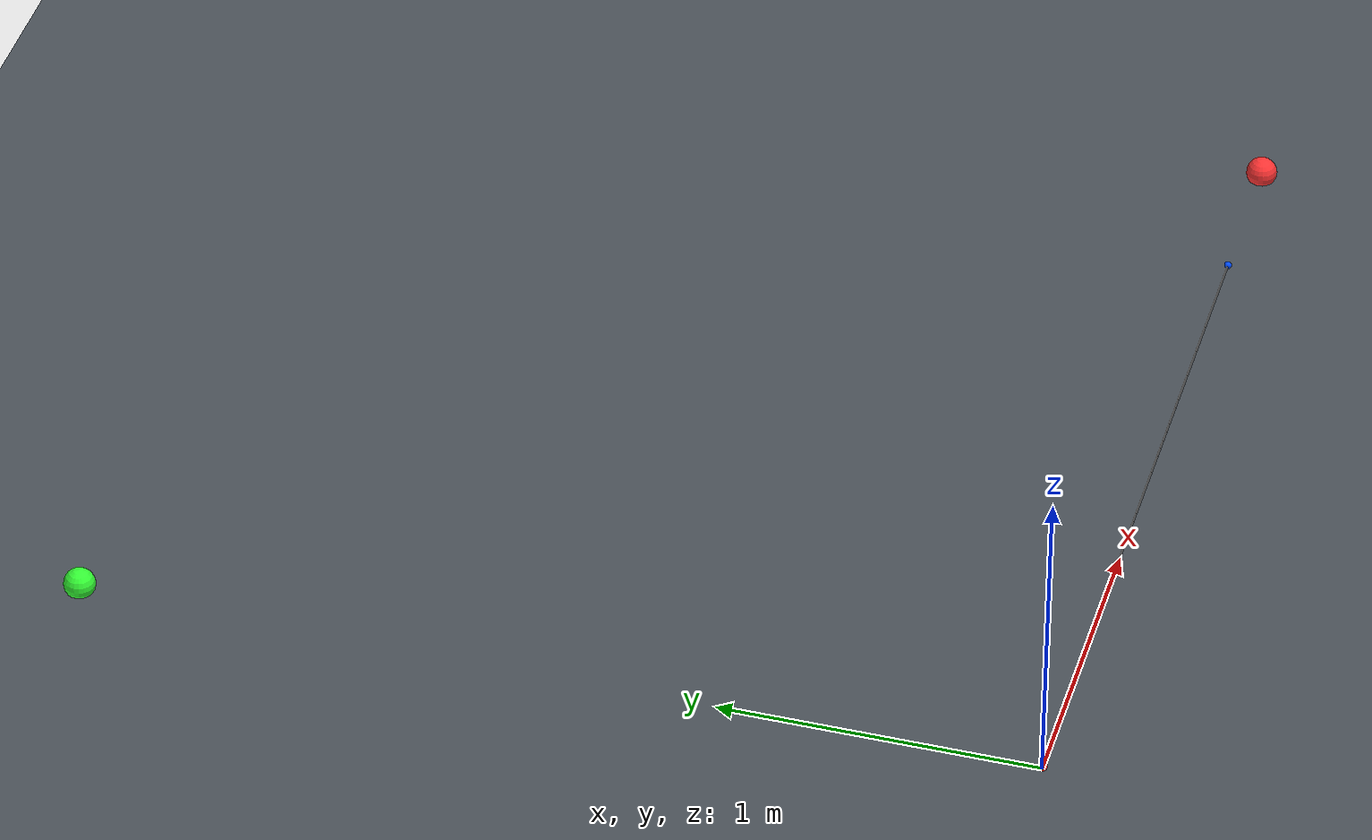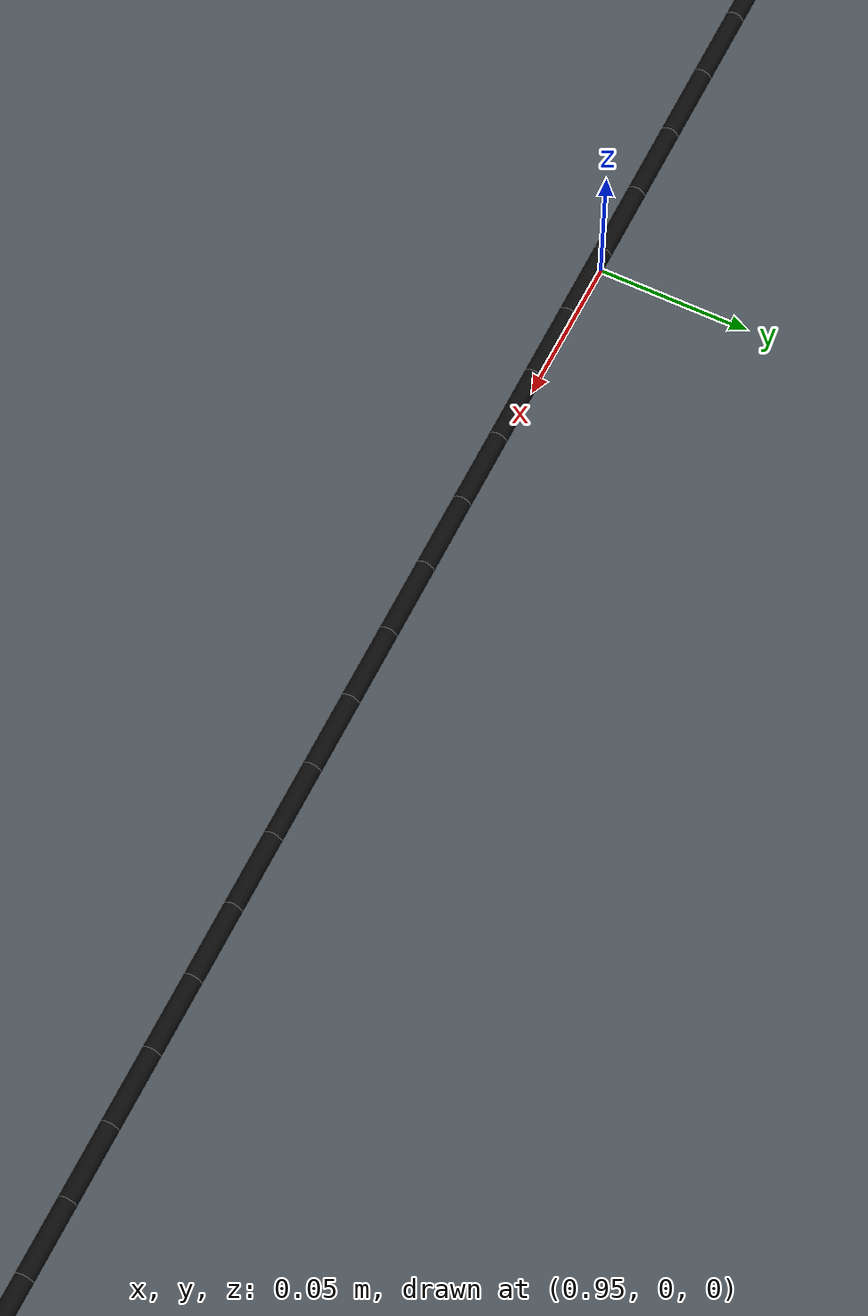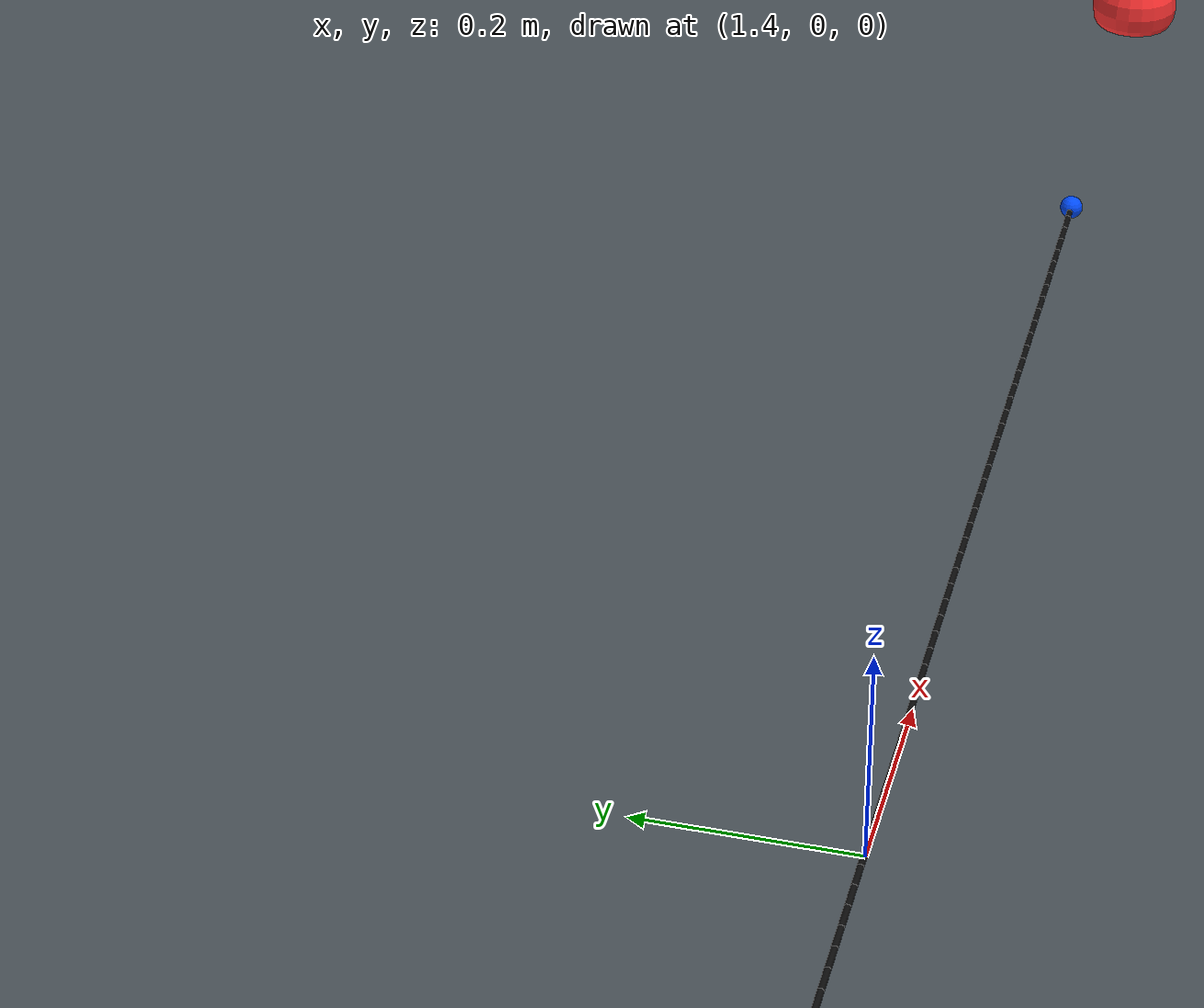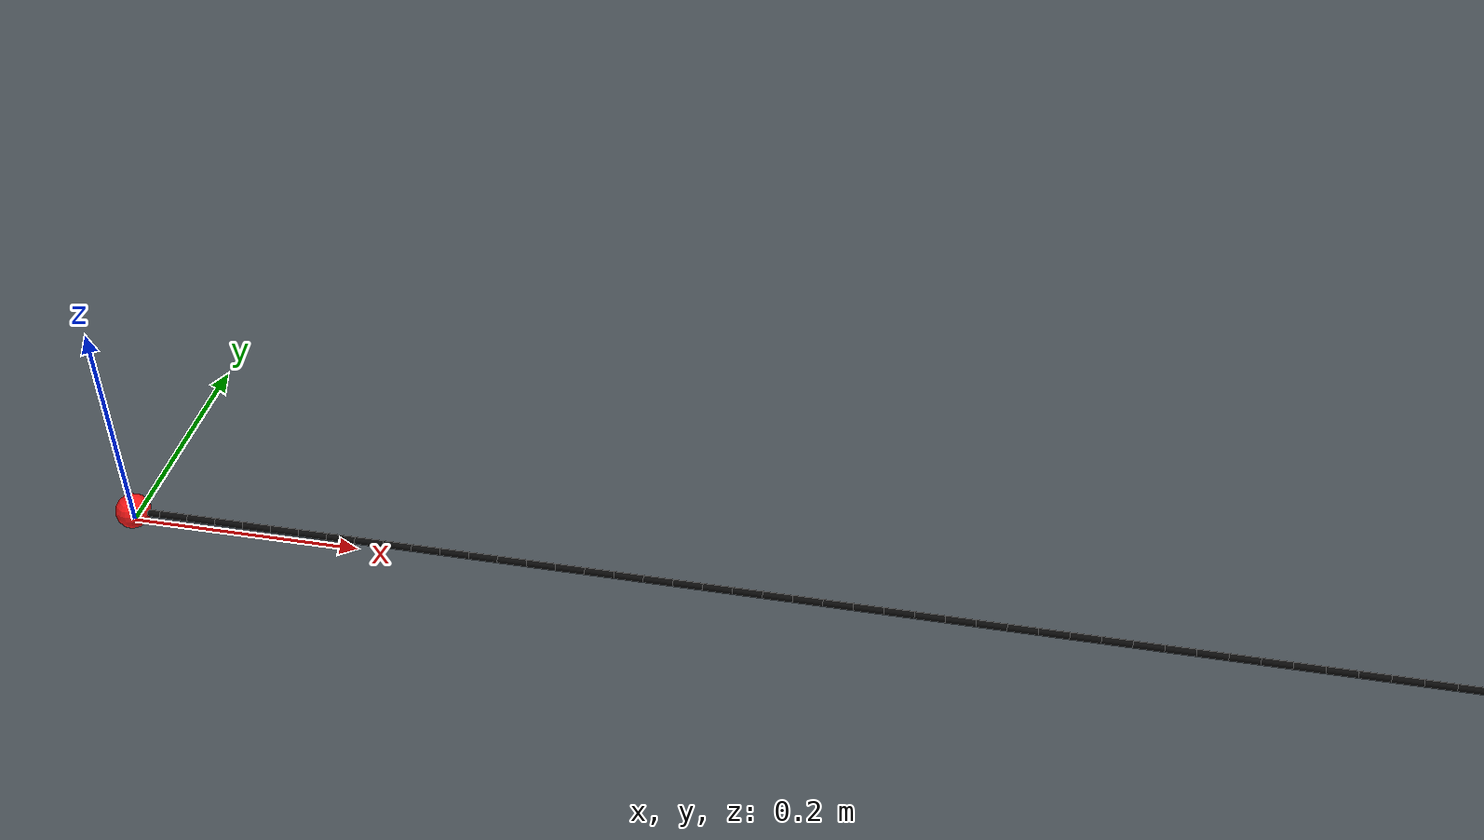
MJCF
<?xml version='1.0' encoding='utf-8'?>
<mujoco model="tether_static_n100">
  <compiler angle="radian" coordinate="local" />
  <option timestep="0.001" gravity="0 0 -9.80665" integrator="RK4" density="1.2" viscosity="0" />
  <default>
    <geom contype="1" conaffinity="1" condim="3" friction="1.0 0.05 0.05" />
    <site type="sphere" size="0.008" rgba="1 0 0 1" />
  </default>
  <visual>
    <headlight ambient="0.4 0.4 0.4" />
    <global offwidth="1280" offheight="720" />
  </visual>
  <asset>
    <texture name="grid" type="2d" builtin="checker" rgb1="0.25 0.28 0.30" rgb2="0.32 0.35 0.38" width="512" height="512" />
    <material name="grid" texture="grid" texrepeat="12 12" reflectance="0.05" />
  </asset>
  <worldbody>
    <light pos="0 0 6" dir="0 0 -1" diffuse="0.8 0.8 0.8" />
    <geom name="floor" type="plane" size="60 60 0.1" material="grid" pos="0 0 0" />
    <site name="east_marker" pos="3 0 0.02" size="0.05" rgba="1 0.2 0.2 1" />
    <site name="north_marker" pos="0 3 0.02" size="0.05" rgba="0.2 1 0.2 1" />
    <body name="tether_link_1" pos="0 0 0.01">
      <joint name="tether_joint_1" type="ball" damping="0.002" armature="1e-6" />
      <geom name="tether_geom_1" type="capsule" fromto="0 0 0 0.025000000000000001 0 0" size="0.0030000000000000001" mass="0.0015" contype="2" conaffinity="1" rgba="0.04 0.04 0.04 1" />
      <body name="tether_link_2" pos="0.025000000000000001 0 0">
        <joint name="tether_joint_2" type="ball" damping="0.002" armature="1e-6" />
        <geom name="tether_geom_2" type="capsule" fromto="0 0 0 0.025000000000000001 0 0" size="0.0030000000000000001" mass="0.0015" contype="2" conaffinity="1" rgba="0.04 0.04 0.04 1" />
        <body name="tether_link_3" pos="0.025000000000000001 0 0">
          <joint name="tether_joint_3" type="ball" damping="0.002" armature="1e-6" />
          <geom name="tether_geom_3" type="capsule" fromto="0 0 0 0.025000000000000008 0 0" size="0.0030000000000000001" mass="0.0015" contype="2" conaffinity="1" rgba="0.04 0.04 0.04 1" />
          <body name="tether_link_4" pos="0.025000000000000008 0 0">
            <joint name="tether_joint_4" type="ball" damping="0.002" armature="1e-6" />
            <geom name="tether_geom_4" type="capsule" fromto="0 0 0 0.024999999999999994 0 0" size="0.0030000000000000001" mass="0.0015" contype="2" conaffinity="1" rgba="0.04 0.04 0.04 1" />
            <body name="tether_link_5" pos="0.024999999999999994 0 0">
              <joint name="tether_joint_5" type="ball" damping="0.002" armature="1e-6" />
              <geom name="tether_geom_5" type="capsule" fromto="0 0 0 0.024999999999999994 0 0" size="0.0030000000000000001" mass="0.0015" contype="2" conaffinity="1" rgba="0.04 0.04 0.04 1" />
              <body name="tether_link_6" pos="0.024999999999999994 0 0">
                <joint name="tether_joint_6" type="ball" damping="0.002" armature="1e-6" />
                <geom name="tether_geom_6" type="capsule" fromto="0 0 0 0.025000000000000022 0 0" size="0.0030000000000000001" mass="0.0015" contype="2" conaffinity="1" rgba="0.04 0.04 0.04 1" />
                <body name="tether_link_7" pos="0.025000000000000022 0 0">
                  <joint name="tether_joint_7" type="ball" damping="0.002" armature="1e-6" />
                  <geom name="tether_geom_7" type="capsule" fromto="0 0 0 0.024999999999999994 0 0" size="0.0030000000000000001" mass="0.0015" contype="2" conaffinity="1" rgba="0.04 0.04 0.04 1" />
                  <body name="tether_link_8" pos="0.024999999999999994 0 0">
                    <joint name="tether_joint_8" type="ball" damping="0.002" armature="1e-6" />
                    <geom name="tether_geom_8" type="capsule" fromto="0 0 0 0.024999999999999994 0 0" size="0.0030000000000000001" mass="0.0015" contype="2" conaffinity="1" rgba="0.04 0.04 0.04 1" />
                    <body name="tether_link_9" pos="0.024999999999999994 0 0">
                      <joint name="tether_joint_9" type="ball" damping="0.002" armature="1e-6" />
                      <geom name="tether_geom_9" type="capsule" fromto="0 0 0 0.024999999999999994 0 0" size="0.0030000000000000001" mass="0.0015" contype="2" conaffinity="1" rgba="0.04 0.04 0.04 1" />
                      <body name="tether_link_10" pos="0.024999999999999994 0 0">
                        <joint name="tether_joint_10" type="ball" damping="0.002" armature="1e-6" />
                        <geom name="tether_geom_10" type="capsule" fromto="0 0 0 0.024999999999999994 0 0" size="0.0030000000000000001" mass="0.0015" contype="2" conaffinity="1" rgba="0.04 0.04 0.04 1" />
                        <body name="tether_link_11" pos="0.024999999999999994 0 0">
                          <joint name="tether_joint_11" type="ball" damping="0.002" armature="1e-6" />
                          <geom name="tether_geom_11" type="capsule" fromto="0 0 0 0.025000000000000022 0 0" size="0.0030000000000000001" mass="0.0015" contype="2" conaffinity="1" rgba="0.04 0.04 0.04 1" />
                          <body name="tether_link_12" pos="0.025000000000000022 0 0">
                            <joint name="tether_joint_12" type="ball" damping="0.002" armature="1e-6" />
                            <geom name="tether_geom_12" type="capsule" fromto="0 0 0 0.025000000000000022 0 0" size="0.0030000000000000001" mass="0.0015" contype="2" conaffinity="1" rgba="0.04 0.04 0.04 1" />
                            <body name="tether_link_13" pos="0.025000000000000022 0 0">
                              <joint name="tether_joint_13" type="ball" damping="0.002" armature="1e-6" />
                              <geom name="tether_geom_13" type="capsule" fromto="0 0 0 0.024999999999999967 0 0" size="0.0030000000000000001" mass="0.0015" contype="2" conaffinity="1" rgba="0.04 0.04 0.04 1" />
                              <body name="tether_link_14" pos="0.024999999999999967 0 0">
                                <joint name="tether_joint_14" type="ball" damping="0.002" armature="1e-6" />
                                <geom name="tether_geom_14" type="capsule" fromto="0 0 0 0.025000000000000022 0 0" size="0.0030000000000000001" mass="0.0015" contype="2" conaffinity="1" rgba="0.04 0.04 0.04 1" />
                                <body name="tether_link_15" pos="0.025000000000000022 0 0">
                                  <joint name="tether_joint_15" type="ball" damping="0.002" armature="1e-6" />
                                  <geom name="tether_geom_15" type="capsule" fromto="0 0 0 0.024999999999999967 0 0" size="0.0030000000000000001" mass="0.0015" contype="2" conaffinity="1" rgba="0.04 0.04 0.04 1" />
                                  <body name="tether_link_16" pos="0.024999999999999967 0 0">
                                    <joint name="tether_joint_16" type="ball" damping="0.002" armature="1e-6" />
                                    <geom name="tether_geom_16" type="capsule" fromto="0 0 0 0.025000000000000022 0 0" size="0.0030000000000000001" mass="0.0015" contype="2" conaffinity="1" rgba="0.04 0.04 0.04 1" />
                                    <body name="tether_link_17" pos="0.025000000000000022 0 0">
                                      <joint name="tether_joint_17" type="ball" damping="0.002" armature="1e-6" />
                                      <geom name="tether_geom_17" type="capsule" fromto="0 0 0 0.025000000000000022 0 0" size="0.0030000000000000001" mass="0.0015" contype="2" conaffinity="1" rgba="0.04 0.04 0.04 1" />
                                      <body name="tether_link_18" pos="0.025000000000000022 0 0">
                                        <joint name="tether_joint_18" type="ball" damping="0.002" armature="1e-6" />
                                        <geom name="tether_geom_18" type="capsule" fromto="0 0 0 0.024999999999999967 0 0" size="0.0030000000000000001" mass="0.0015" contype="2" conaffinity="1" rgba="0.04 0.04 0.04 1" />
                                        <body name="tether_link_19" pos="0.024999999999999967 0 0">
                                          <joint name="tether_joint_19" type="ball" damping="0.002" armature="1e-6" />
                                          <geom name="tether_geom_19" type="capsule" fromto="0 0 0 0.025000000000000022 0 0" size="0.0030000000000000001" mass="0.0015" contype="2" conaffinity="1" rgba="0.04 0.04 0.04 1" />
                                          <body name="tether_link_20" pos="0.025000000000000022 0 0">
                                            <joint name="tether_joint_20" type="ball" damping="0.002" armature="1e-6" />
                                            <geom name="tether_geom_20" type="capsule" fromto="0 0 0 0.024999999999999967 0 0" size="0.0030000000000000001" mass="0.0015" contype="2" conaffinity="1" rgba="0.04 0.04 0.04 1" />
                                            <body name="tether_link_21" pos="0.024999999999999967 0 0">
                                              <joint name="tether_joint_21" type="ball" damping="0.002" armature="1e-6" />
                                              <geom name="tether_geom_21" type="capsule" fromto="0 0 0 0.025000000000000022 0 0" size="0.0030000000000000001" mass="0.0015" contype="2" conaffinity="1" rgba="0.04 0.04 0.04 1" />
                                              <body name="tether_link_22" pos="0.025000000000000022 0 0">
                                                <joint name="tether_joint_22" type="ball" damping="0.002" armature="1e-6" />
                                                <geom name="tether_geom_22" type="capsule" fromto="0 0 0 0.025000000000000022 0 0" size="0.0030000000000000001" mass="0.0015" contype="2" conaffinity="1" rgba="0.04 0.04 0.04 1" />
                                                <body name="tether_link_23" pos="0.025000000000000022 0 0">
                                                  <joint name="tether_joint_23" type="ball" damping="0.002" armature="1e-6" />
                                                  <geom name="tether_geom_23" type="capsule" fromto="0 0 0 0.025000000000000022 0 0" size="0.0030000000000000001" mass="0.0015" contype="2" conaffinity="1" rgba="0.04 0.04 0.04 1" />
                                                  <body name="tether_link_24" pos="0.025000000000000022 0 0">
                                                    <joint name="tether_joint_24" type="ball" damping="0.002" armature="1e-6" />
                                                    <geom name="tether_geom_24" type="capsule" fromto="0 0 0 0.025000000000000022 0 0" size="0.0030000000000000001" mass="0.0015" contype="2" conaffinity="1" rgba="0.04 0.04 0.04 1" />
                                                    <body name="tether_link_25" pos="0.025000000000000022 0 0">
                                                      <joint name="tether_joint_25" type="ball" damping="0.002" armature="1e-6" />
                                                      <geom name="tether_geom_25" type="capsule" fromto="0 0 0 0.024999999999999911 0 0" size="0.0030000000000000001" mass="0.0015" contype="2" conaffinity="1" rgba="0.04 0.04 0.04 1" />
                                                      <body name="tether_link_26" pos="0.024999999999999911 0 0">
                                                        <joint name="tether_joint_26" type="ball" damping="0.002" armature="1e-6" />
                                                        <geom name="tether_geom_26" type="capsule" fromto="0 0 0 0.025000000000000022 0 0" size="0.0030000000000000001" mass="0.0015" contype="2" conaffinity="1" rgba="0.04 0.04 0.04 1" />
                                                        <body name="tether_link_27" pos="0.025000000000000022 0 0">
                                                          <joint name="tether_joint_27" type="ball" damping="0.002" armature="1e-6" />
                                                          <geom name="tether_geom_27" type="capsule" fromto="0 0 0 0.025000000000000022 0 0" size="0.0030000000000000001" mass="0.0015" contype="2" conaffinity="1" rgba="0.04 0.04 0.04 1" />
                                                          <body name="tether_link_28" pos="0.025000000000000022 0 0">
                                                            <joint name="tether_joint_28" type="ball" damping="0.002" armature="1e-6" />
                                                            <geom name="tether_geom_28" type="capsule" fromto="0 0 0 0.025000000000000022 0 0" size="0.0030000000000000001" mass="0.0015" contype="2" conaffinity="1" rgba="0.04 0.04 0.04 1" />
                                                            <body name="tether_link_29" pos="0.025000000000000022 0 0">
                                                              <joint name="tether_joint_29" type="ball" damping="0.002" armature="1e-6" />
                                                              <geom name="tether_geom_29" type="capsule" fromto="0 0 0 0.025000000000000022 0 0" size="0.0030000000000000001" mass="0.0015" contype="2" conaffinity="1" rgba="0.04 0.04 0.04 1" />
                                                              <body name="tether_link_30" pos="0.025000000000000022 0 0">
                                                                <joint name="tether_joint_30" type="ball" damping="0.002" armature="1e-6" />
                                                                <geom name="tether_geom_30" type="capsule" fromto="0 0 0 0.024999999999999911 0 0" size="0.0030000000000000001" mass="0.0015" contype="2" conaffinity="1" rgba="0.04 0.04 0.04 1" />
                                                                <body name="tether_link_31" pos="0.024999999999999911 0 0">
                                                                  <joint name="tether_joint_31" type="ball" damping="0.002" armature="1e-6" />
                                                                  <geom name="tether_geom_31" type="capsule" fromto="0 0 0 0.025000000000000022 0 0" size="0.0030000000000000001" mass="0.0015" contype="2" conaffinity="1" rgba="0.04 0.04 0.04 1" />
                                                                  <body name="tether_link_32" pos="0.025000000000000022 0 0">
                                                                    <joint name="tether_joint_32" type="ball" damping="0.002" armature="1e-6" />
                                                                    <geom name="tether_geom_32" type="capsule" fromto="0 0 0 0.025000000000000022 0 0" size="0.0030000000000000001" mass="0.0015" contype="2" conaffinity="1" rgba="0.04 0.04 0.04 1" />
                                                                    <body name="tether_link_33" pos="0.025000000000000022 0 0">
                                                                      <joint name="tether_joint_33" type="ball" damping="0.002" armature="1e-6" />
                                                                      <geom name="tether_geom_33" type="capsule" fromto="0 0 0 0.025000000000000022 0 0" size="0.0030000000000000001" mass="0.0015" contype="2" conaffinity="1" rgba="0.04 0.04 0.04 1" />
                                                                      <body name="tether_link_34" pos="0.025000000000000022 0 0">
                                                                        <joint name="tether_joint_34" type="ball" damping="0.002" armature="1e-6" />
                                                                        <geom name="tether_geom_34" type="capsule" fromto="0 0 0 0.025000000000000022 0 0" size="0.0030000000000000001" mass="0.0015" contype="2" conaffinity="1" rgba="0.04 0.04 0.04 1" />
                                                                        <body name="tether_link_35" pos="0.025000000000000022 0 0">
                                                                          <joint name="tether_joint_35" type="ball" damping="0.002" armature="1e-6" />
                                                                          <geom name="tether_geom_35" type="capsule" fromto="0 0 0 0.024999999999999911 0 0" size="0.0030000000000000001" mass="0.0015" contype="2" conaffinity="1" rgba="0.04 0.04 0.04 1" />
                                                                          <body name="tether_link_36" pos="0.024999999999999911 0 0">
                                                                            <joint name="tether_joint_36" type="ball" damping="0.002" armature="1e-6" />
                                                                            <geom name="tether_geom_36" type="capsule" fromto="0 0 0 0.025000000000000022 0 0" size="0.0030000000000000001" mass="0.0015" contype="2" conaffinity="1" rgba="0.04 0.04 0.04 1" />
                                                                            <body name="tether_link_37" pos="0.025000000000000022 0 0">
                                                                              <joint name="tether_joint_37" type="ball" damping="0.002" armature="1e-6" />
                                                                              <geom name="tether_geom_37" type="capsule" fromto="0 0 0 0.025000000000000022 0 0" size="0.0030000000000000001" mass="0.0015" contype="2" conaffinity="1" rgba="0.04 0.04 0.04 1" />
                                                                              <body name="tether_link_38" pos="0.025000000000000022 0 0">
                                                                                <joint name="tether_joint_38" type="ball" damping="0.002" armature="1e-6" />
                                                                                <geom name="tether_geom_38" type="capsule" fromto="0 0 0 0.025000000000000022 0 0" size="0.0030000000000000001" mass="0.0015" contype="2" conaffinity="1" rgba="0.04 0.04 0.04 1" />
                                                                                <body name="tether_link_39" pos="0.025000000000000022 0 0">
                                                                                  <joint name="tether_joint_39" type="ball" damping="0.002" armature="1e-6" />
                                                                                  <geom name="tether_geom_39" type="capsule" fromto="0 0 0 0.025000000000000022 0 0" size="0.0030000000000000001" mass="0.0015" contype="2" conaffinity="1" rgba="0.04 0.04 0.04 1" />
                                                                                  <body name="tether_link_40" pos="0.025000000000000022 0 0">
                                                                                    <joint name="tether_joint_40" type="ball" damping="0.002" armature="1e-6" />
                                                                                    <geom name="tether_geom_40" type="capsule" fromto="0 0 0 0.024999999999999911 0 0" size="0.0030000000000000001" mass="0.0015" contype="2" conaffinity="1" rgba="0.04 0.04 0.04 1" />
                                                                                    <body name="tether_link_41" pos="0.024999999999999911 0 0">
                                                                                      <joint name="tether_joint_41" type="ball" damping="0.002" armature="1e-6" />
                                                                                      <geom name="tether_geom_41" type="capsule" fromto="0 0 0 0.025000000000000133 0 0" size="0.0030000000000000001" mass="0.0015" contype="2" conaffinity="1" rgba="0.04 0.04 0.04 1" />
                                                                                      <body name="tether_link_42" pos="0.025000000000000133 0 0">
                                                                                        <joint name="tether_joint_42" type="ball" damping="0.002" armature="1e-6" />
                                                                                        <geom name="tether_geom_42" type="capsule" fromto="0 0 0 0.024999999999999911 0 0" size="0.0030000000000000001" mass="0.0015" contype="2" conaffinity="1" rgba="0.04 0.04 0.04 1" />
                                                                                        <body name="tether_link_43" pos="0.024999999999999911 0 0">
                                                                                          <joint name="tether_joint_43" type="ball" damping="0.002" armature="1e-6" />
                                                                                          <geom name="tether_geom_43" type="capsule" fromto="0 0 0 0.024999999999999911 0 0" size="0.0030000000000000001" mass="0.0015" contype="2" conaffinity="1" rgba="0.04 0.04 0.04 1" />
                                                                                          <body name="tether_link_44" pos="0.024999999999999911 0 0">
                                                                                            <joint name="tether_joint_44" type="ball" damping="0.002" armature="1e-6" />
                                                                                            <geom name="tether_geom_44" type="capsule" fromto="0 0 0 0.025000000000000133 0 0" size="0.0030000000000000001" mass="0.0015" contype="2" conaffinity="1" rgba="0.04 0.04 0.04 1" />
                                                                                            <body name="tether_link_45" pos="0.025000000000000133 0 0">
                                                                                              <joint name="tether_joint_45" type="ball" damping="0.002" armature="1e-6" />
                                                                                              <geom name="tether_geom_45" type="capsule" fromto="0 0 0 0.024999999999999911 0 0" size="0.0030000000000000001" mass="0.0015" contype="2" conaffinity="1" rgba="0.04 0.04 0.04 1" />
                                                                                              <body name="tether_link_46" pos="0.024999999999999911 0 0">
                                                                                                <joint name="tether_joint_46" type="ball" damping="0.002" armature="1e-6" />
                                                                                                <geom name="tether_geom_46" type="capsule" fromto="0 0 0 0.025000000000000133 0 0" size="0.0030000000000000001" mass="0.0015" contype="2" conaffinity="1" rgba="0.04 0.04 0.04 1" />
                                                                                                <body name="tether_link_47" pos="0.025000000000000133 0 0">
                                                                                                  <joint name="tether_joint_47" type="ball" damping="0.002" armature="1e-6" />
                                                                                                  <geom name="tether_geom_47" type="capsule" fromto="0 0 0 0.024999999999999911 0 0" size="0.0030000000000000001" mass="0.0015" contype="2" conaffinity="1" rgba="0.04 0.04 0.04 1" />
                                                                                                  <body name="tether_link_48" pos="0.024999999999999911 0 0">
                                                                                                    <joint name="tether_joint_48" type="ball" damping="0.002" armature="1e-6" />
                                                                                                    <geom name="tether_geom_48" type="capsule" fromto="0 0 0 0.025000000000000133 0 0" size="0.0030000000000000001" mass="0.0015" contype="2" conaffinity="1" rgba="0.04 0.04 0.04 1" />
                                                                                                    <body name="tether_link_49" pos="0.025000000000000133 0 0">
                                                                                                      <joint name="tether_joint_49" type="ball" damping="0.002" armature="1e-6" />
                                                                                                      <geom name="tether_geom_49" type="capsule" fromto="0 0 0 0.024999999999999911 0 0" size="0.0030000000000000001" mass="0.0015" contype="2" conaffinity="1" rgba="0.04 0.04 0.04 1" />
                                                                                                      <body name="tether_link_50" pos="0.024999999999999911 0 0">
                                                                                                        <joint name="tether_joint_50" type="ball" damping="0.002" armature="1e-6" />
                                                                                                        <geom name="tether_geom_50" type="capsule" fromto="0 0 0 0.024999999999999911 0 0" size="0.0030000000000000001" mass="0.0015" contype="2" conaffinity="1" rgba="0.04 0.04 0.04 1" />
                                                                                                        <body name="tether_link_51" pos="0.024999999999999911 0 0">
                                                                                                          <joint name="tether_joint_51" type="ball" damping="0.002" armature="1e-6" />
                                                                                                          <geom name="tether_geom_51" type="capsule" fromto="0 0 0 0.025000000000000133 0 0" size="0.0030000000000000001" mass="0.0015" contype="2" conaffinity="1" rgba="0.04 0.04 0.04 1" />
                                                                                                          <body name="tether_link_52" pos="0.025000000000000133 0 0">
                                                                                                            <joint name="tether_joint_52" type="ball" damping="0.002" armature="1e-6" />
                                                                                                            <geom name="tether_geom_52" type="capsule" fromto="0 0 0 0.024999999999999911 0 0" size="0.0030000000000000001" mass="0.0015" contype="2" conaffinity="1" rgba="0.04 0.04 0.04 1" />
                                                                                                            <body name="tether_link_53" pos="0.024999999999999911 0 0">
                                                                                                              <joint name="tether_joint_53" type="ball" damping="0.002" armature="1e-6" />
                                                                                                              <geom name="tether_geom_53" type="capsule" fromto="0 0 0 0.025000000000000133 0 0" size="0.0030000000000000001" mass="0.0015" contype="2" conaffinity="1" rgba="0.04 0.04 0.04 1" />
                                                                                                              <body name="tether_link_54" pos="0.025000000000000133 0 0">
                                                                                                                <joint name="tether_joint_54" type="ball" damping="0.002" armature="1e-6" />
                                                                                                                <geom name="tether_geom_54" type="capsule" fromto="0 0 0 0.024999999999999911 0 0" size="0.0030000000000000001" mass="0.0015" contype="2" conaffinity="1" rgba="0.04 0.04 0.04 1" />
                                                                                                                <body name="tether_link_55" pos="0.024999999999999911 0 0">
                                                                                                                  <joint name="tether_joint_55" type="ball" damping="0.002" armature="1e-6" />
                                                                                                                  <geom name="tether_geom_55" type="capsule" fromto="0 0 0 0.024999999999999911 0 0" size="0.0030000000000000001" mass="0.0015" contype="2" conaffinity="1" rgba="0.04 0.04 0.04 1" />
                                                                                                                  <body name="tether_link_56" pos="0.024999999999999911 0 0">
                                                                                                                    <joint name="tether_joint_56" type="ball" damping="0.002" armature="1e-6" />
                                                                                                                    <geom name="tether_geom_56" type="capsule" fromto="0 0 0 0.025000000000000133 0 0" size="0.0030000000000000001" mass="0.0015" contype="2" conaffinity="1" rgba="0.04 0.04 0.04 1" />
                                                                                                                    <body name="tether_link_57" pos="0.025000000000000133 0 0">
                                                                                                                      <joint name="tether_joint_57" type="ball" damping="0.002" armature="1e-6" />
                                                                                                                      <geom name="tether_geom_57" type="capsule" fromto="0 0 0 0.024999999999999911 0 0" size="0.0030000000000000001" mass="0.0015" contype="2" conaffinity="1" rgba="0.04 0.04 0.04 1" />
                                                                                                                      <body name="tether_link_58" pos="0.024999999999999911 0 0">
                                                                                                                        <joint name="tether_joint_58" type="ball" damping="0.002" armature="1e-6" />
                                                                                                                        <geom name="tether_geom_58" type="capsule" fromto="0 0 0 0.025000000000000133 0 0" size="0.0030000000000000001" mass="0.0015" contype="2" conaffinity="1" rgba="0.04 0.04 0.04 1" />
                                                                                                                        <body name="tether_link_59" pos="0.025000000000000133 0 0">
                                                                                                                          <joint name="tether_joint_59" type="ball" damping="0.002" armature="1e-6" />
                                                                                                                          <geom name="tether_geom_59" type="capsule" fromto="0 0 0 0.024999999999999911 0 0" size="0.0030000000000000001" mass="0.0015" contype="2" conaffinity="1" rgba="0.04 0.04 0.04 1" />
                                                                                                                          <body name="tether_link_60" pos="0.024999999999999911 0 0">
                                                                                                                            <joint name="tether_joint_60" type="ball" damping="0.002" armature="1e-6" />
                                                                                                                            <geom name="tether_geom_60" type="capsule" fromto="0 0 0 0.024999999999999911 0 0" size="0.0030000000000000001" mass="0.0015" contype="2" conaffinity="1" rgba="0.04 0.04 0.04 1" />
                                                                                                                            <body name="tether_link_61" pos="0.024999999999999911 0 0">
                                                                                                                              <joint name="tether_joint_61" type="ball" damping="0.002" armature="1e-6" />
                                                                                                                              <geom name="tether_geom_61" type="capsule" fromto="0 0 0 0.025000000000000133 0 0" size="0.0030000000000000001" mass="0.0015" contype="2" conaffinity="1" rgba="0.04 0.04 0.04 1" />
                                                                                                                              <body name="tether_link_62" pos="0.025000000000000133 0 0">
                                                                                                                                <joint name="tether_joint_62" type="ball" damping="0.002" armature="1e-6" />
                                                                                                                                <geom name="tether_geom_62" type="capsule" fromto="0 0 0 0.024999999999999911 0 0" size="0.0030000000000000001" mass="0.0015" contype="2" conaffinity="1" rgba="0.04 0.04 0.04 1" />
                                                                                                                                <body name="tether_link_63" pos="0.024999999999999911 0 0">
                                                                                                                                  <joint name="tether_joint_63" type="ball" damping="0.002" armature="1e-6" />
                                                                                                                                  <geom name="tether_geom_63" type="capsule" fromto="0 0 0 0.025000000000000133 0 0" size="0.0030000000000000001" mass="0.0015" contype="2" conaffinity="1" rgba="0.04 0.04 0.04 1" />
                                                                                                                                  <body name="tether_link_64" pos="0.025000000000000133 0 0">
                                                                                                                                    <joint name="tether_joint_64" type="ball" damping="0.002" armature="1e-6" />
                                                                                                                                    <geom name="tether_geom_64" type="capsule" fromto="0 0 0 0.024999999999999911 0 0" size="0.0030000000000000001" mass="0.0015" contype="2" conaffinity="1" rgba="0.04 0.04 0.04 1" />
                                                                                                                                    <body name="tether_link_65" pos="0.024999999999999911 0 0">
                                                                                                                                      <joint name="tether_joint_65" type="ball" damping="0.002" armature="1e-6" />
                                                                                                                                      <geom name="tether_geom_65" type="capsule" fromto="0 0 0 0.024999999999999911 0 0" size="0.0030000000000000001" mass="0.0015" contype="2" conaffinity="1" rgba="0.04 0.04 0.04 1" />
                                                                                                                                      <body name="tether_link_66" pos="0.024999999999999911 0 0">
                                                                                                                                        <joint name="tether_joint_66" type="ball" damping="0.002" armature="1e-6" />
                                                                                                                                        <geom name="tether_geom_66" type="capsule" fromto="0 0 0 0.025000000000000133 0 0" size="0.0030000000000000001" mass="0.0015" contype="2" conaffinity="1" rgba="0.04 0.04 0.04 1" />
                                                                                                                                        <body name="tether_link_67" pos="0.025000000000000133 0 0">
                                                                                                                                          <joint name="tether_joint_67" type="ball" damping="0.002" armature="1e-6" />
                                                                                                                                          <geom name="tether_geom_67" type="capsule" fromto="0 0 0 0.024999999999999911 0 0" size="0.0030000000000000001" mass="0.0015" contype="2" conaffinity="1" rgba="0.04 0.04 0.04 1" />
                                                                                                                                          <body name="tether_link_68" pos="0.024999999999999911 0 0">
                                                                                                                                            <joint name="tether_joint_68" type="ball" damping="0.002" armature="1e-6" />
                                                                                                                                            <geom name="tether_geom_68" type="capsule" fromto="0 0 0 0.025000000000000133 0 0" size="0.0030000000000000001" mass="0.0015" contype="2" conaffinity="1" rgba="0.04 0.04 0.04 1" />
                                                                                                                                            <body name="tether_link_69" pos="0.025000000000000133 0 0">
                                                                                                                                              <joint name="tether_joint_69" type="ball" damping="0.002" armature="1e-6" />
                                                                                                                                              <geom name="tether_geom_69" type="capsule" fromto="0 0 0 0.024999999999999911 0 0" size="0.0030000000000000001" mass="0.0015" contype="2" conaffinity="1" rgba="0.04 0.04 0.04 1" />
                                                                                                                                              <body name="tether_link_70" pos="0.024999999999999911 0 0">
                                                                                                                                                <joint name="tether_joint_70" type="ball" damping="0.002" armature="1e-6" />
                                                                                                                                                <geom name="tether_geom_70" type="capsule" fromto="0 0 0 0.024999999999999911 0 0" size="0.0030000000000000001" mass="0.0015" contype="2" conaffinity="1" rgba="0.04 0.04 0.04 1" />
                                                                                                                                                <body name="tether_link_71" pos="0.024999999999999911 0 0">
                                                                                                                                                  <joint name="tether_joint_71" type="ball" damping="0.002" armature="1e-6" />
                                                                                                                                                  <geom name="tether_geom_71" type="capsule" fromto="0 0 0 0.025000000000000133 0 0" size="0.0030000000000000001" mass="0.0015" contype="2" conaffinity="1" rgba="0.04 0.04 0.04 1" />
                                                                                                                                                  <body name="tether_link_72" pos="0.025000000000000133 0 0">
                                                                                                                                                    <joint name="tether_joint_72" type="ball" damping="0.002" armature="1e-6" />
                                                                                                                                                    <geom name="tether_geom_72" type="capsule" fromto="0 0 0 0.024999999999999911 0 0" size="0.0030000000000000001" mass="0.0015" contype="2" conaffinity="1" rgba="0.04 0.04 0.04 1" />
                                                                                                                                                    <body name="tether_link_73" pos="0.024999999999999911 0 0">
                                                                                                                                                      <joint name="tether_joint_73" type="ball" damping="0.002" armature="1e-6" />
                                                                                                                                                      <geom name="tether_geom_73" type="capsule" fromto="0 0 0 0.025000000000000133 0 0" size="0.0030000000000000001" mass="0.0015" contype="2" conaffinity="1" rgba="0.04 0.04 0.04 1" />
                                                                                                                                                      <body name="tether_link_74" pos="0.025000000000000133 0 0">
                                                                                                                                                        <joint name="tether_joint_74" type="ball" damping="0.002" armature="1e-6" />
                                                                                                                                                        <geom name="tether_geom_74" type="capsule" fromto="0 0 0 0.024999999999999911 0 0" size="0.0030000000000000001" mass="0.0015" contype="2" conaffinity="1" rgba="0.04 0.04 0.04 1" />
                                                                                                                                                        <body name="tether_link_75" pos="0.024999999999999911 0 0">
                                                                                                                                                          <joint name="tether_joint_75" type="ball" damping="0.002" armature="1e-6" />
                                                                                                                                                          <geom name="tether_geom_75" type="capsule" fromto="0 0 0 0.024999999999999911 0 0" size="0.0030000000000000001" mass="0.0015" contype="2" conaffinity="1" rgba="0.04 0.04 0.04 1" />
                                                                                                                                                          <body name="tether_link_76" pos="0.024999999999999911 0 0">
                                                                                                                                                            <joint name="tether_joint_76" type="ball" damping="0.002" armature="1e-6" />
                                                                                                                                                            <geom name="tether_geom_76" type="capsule" fromto="0 0 0 0.025000000000000133 0 0" size="0.0030000000000000001" mass="0.0015" contype="2" conaffinity="1" rgba="0.04 0.04 0.04 1" />
                                                                                                                                                            <body name="tether_link_77" pos="0.025000000000000133 0 0">
                                                                                                                                                              <joint name="tether_joint_77" type="ball" damping="0.002" armature="1e-6" />
                                                                                                                                                              <geom name="tether_geom_77" type="capsule" fromto="0 0 0 0.024999999999999911 0 0" size="0.0030000000000000001" mass="0.0015" contype="2" conaffinity="1" rgba="0.04 0.04 0.04 1" />
                                                                                                                                                              <body name="tether_link_78" pos="0.024999999999999911 0 0">
                                                                                                                                                                <joint name="tether_joint_78" type="ball" damping="0.002" armature="1e-6" />
                                                                                                                                                                <geom name="tether_geom_78" type="capsule" fromto="0 0 0 0.025000000000000133 0 0" size="0.0030000000000000001" mass="0.0015" contype="2" conaffinity="1" rgba="0.04 0.04 0.04 1" />
                                                                                                                                                                <body name="tether_link_79" pos="0.025000000000000133 0 0">
                                                                                                                                                                  <joint name="tether_joint_79" type="ball" damping="0.002" armature="1e-6" />
                                                                                                                                                                  <geom name="tether_geom_79" type="capsule" fromto="0 0 0 0.024999999999999911 0 0" size="0.0030000000000000001" mass="0.0015" contype="2" conaffinity="1" rgba="0.04 0.04 0.04 1" />
                                                                                                                                                                  <body name="tether_link_80" pos="0.024999999999999911 0 0">
                                                                                                                                                                    <joint name="tether_joint_80" type="ball" damping="0.002" armature="1e-6" />
                                                                                                                                                                    <geom name="tether_geom_80" type="capsule" fromto="0 0 0 0.024999999999999911 0 0" size="0.0030000000000000001" mass="0.0015" contype="2" conaffinity="1" rgba="0.04 0.04 0.04 1" />
                                                                                                                                                                    <body name="tether_link_81" pos="0.024999999999999911 0 0">
                                                                                                                                                                      <joint name="tether_joint_81" type="ball" damping="0.002" armature="1e-6" />
                                                                                                                                                                      <geom name="tether_geom_81" type="capsule" fromto="0 0 0 0.024999999999999911 0 0" size="0.0030000000000000001" mass="0.0015" contype="2" conaffinity="1" rgba="0.04 0.04 0.04 1" />
                                                                                                                                                                      <body name="tether_link_82" pos="0.024999999999999911 0 0">
                                                                                                                                                                        <joint name="tether_joint_82" type="ball" damping="0.002" armature="1e-6" />
                                                                                                                                                                        <geom name="tether_geom_82" type="capsule" fromto="0 0 0 0.025000000000000355 0 0" size="0.0030000000000000001" mass="0.0015" contype="2" conaffinity="1" rgba="0.04 0.04 0.04 1" />
                                                                                                                                                                        <body name="tether_link_83" pos="0.025000000000000355 0 0">
                                                                                                                                                                          <joint name="tether_joint_83" type="ball" damping="0.002" armature="1e-6" />
                                                                                                                                                                          <geom name="tether_geom_83" type="capsule" fromto="0 0 0 0.024999999999999911 0 0" size="0.0030000000000000001" mass="0.0015" contype="2" conaffinity="1" rgba="0.04 0.04 0.04 1" />
                                                                                                                                                                          <body name="tether_link_84" pos="0.024999999999999911 0 0">
                                                                                                                                                                            <joint name="tether_joint_84" type="ball" damping="0.002" armature="1e-6" />
                                                                                                                                                                            <geom name="tether_geom_84" type="capsule" fromto="0 0 0 0.024999999999999911 0 0" size="0.0030000000000000001" mass="0.0015" contype="2" conaffinity="1" rgba="0.04 0.04 0.04 1" />
                                                                                                                                                                            <body name="tether_link_85" pos="0.024999999999999911 0 0">
                                                                                                                                                                              <joint name="tether_joint_85" type="ball" damping="0.002" armature="1e-6" />
                                                                                                                                                                              <geom name="tether_geom_85" type="capsule" fromto="0 0 0 0.024999999999999911 0 0" size="0.0030000000000000001" mass="0.0015" contype="2" conaffinity="1" rgba="0.04 0.04 0.04 1" />
                                                                                                                                                                              <body name="tether_link_86" pos="0.024999999999999911 0 0">
                                                                                                                                                                                <joint name="tether_joint_86" type="ball" damping="0.002" armature="1e-6" />
                                                                                                                                                                                <geom name="tether_geom_86" type="capsule" fromto="0 0 0 0.024999999999999911 0 0" size="0.0030000000000000001" mass="0.0015" contype="2" conaffinity="1" rgba="0.04 0.04 0.04 1" />
                                                                                                                                                                                <body name="tether_link_87" pos="0.024999999999999911 0 0">
                                                                                                                                                                                  <joint name="tether_joint_87" type="ball" damping="0.002" armature="1e-6" />
                                                                                                                                                                                  <geom name="tether_geom_87" type="capsule" fromto="0 0 0 0.025000000000000355 0 0" size="0.0030000000000000001" mass="0.0015" contype="2" conaffinity="1" rgba="0.04 0.04 0.04 1" />
                                                                                                                                                                                  <body name="tether_link_88" pos="0.025000000000000355 0 0">
                                                                                                                                                                                    <joint name="tether_joint_88" type="ball" damping="0.002" armature="1e-6" />
                                                                                                                                                                                    <geom name="tether_geom_88" type="capsule" fromto="0 0 0 0.024999999999999911 0 0" size="0.0030000000000000001" mass="0.0015" contype="2" conaffinity="1" rgba="0.04 0.04 0.04 1" />
                                                                                                                                                                                    <body name="tether_link_89" pos="0.024999999999999911 0 0">
                                                                                                                                                                                      <joint name="tether_joint_89" type="ball" damping="0.002" armature="1e-6" />
                                                                                                                                                                                      <geom name="tether_geom_89" type="capsule" fromto="0 0 0 0.024999999999999911 0 0" size="0.0030000000000000001" mass="0.0015" contype="2" conaffinity="1" rgba="0.04 0.04 0.04 1" />
                                                                                                                                                                                      <body name="tether_link_90" pos="0.024999999999999911 0 0">
                                                                                                                                                                                        <joint name="tether_joint_90" type="ball" damping="0.002" armature="1e-6" />
                                                                                                                                                                                        <geom name="tether_geom_90" type="capsule" fromto="0 0 0 0.024999999999999911 0 0" size="0.0030000000000000001" mass="0.0015" contype="2" conaffinity="1" rgba="0.04 0.04 0.04 1" />
                                                                                                                                                                                        <body name="tether_link_91" pos="0.024999999999999911 0 0">
                                                                                                                                                                                          <joint name="tether_joint_91" type="ball" damping="0.002" armature="1e-6" />
                                                                                                                                                                                          <geom name="tether_geom_91" type="capsule" fromto="0 0 0 0.024999999999999911 0 0" size="0.0030000000000000001" mass="0.0015" contype="2" conaffinity="1" rgba="0.04 0.04 0.04 1" />
                                                                                                                                                                                          <body name="tether_link_92" pos="0.024999999999999911 0 0">
                                                                                                                                                                                            <joint name="tether_joint_92" type="ball" damping="0.002" armature="1e-6" />
                                                                                                                                                                                            <geom name="tether_geom_92" type="capsule" fromto="0 0 0 0.025000000000000355 0 0" size="0.0030000000000000001" mass="0.0015" contype="2" conaffinity="1" rgba="0.04 0.04 0.04 1" />
                                                                                                                                                                                            <body name="tether_link_93" pos="0.025000000000000355 0 0">
                                                                                                                                                                                              <joint name="tether_joint_93" type="ball" damping="0.002" armature="1e-6" />
                                                                                                                                                                                              <geom name="tether_geom_93" type="capsule" fromto="0 0 0 0.024999999999999911 0 0" size="0.0030000000000000001" mass="0.0015" contype="2" conaffinity="1" rgba="0.04 0.04 0.04 1" />
                                                                                                                                                                                              <body name="tether_link_94" pos="0.024999999999999911 0 0">
                                                                                                                                                                                                <joint name="tether_joint_94" type="ball" damping="0.002" armature="1e-6" />
                                                                                                                                                                                                <geom name="tether_geom_94" type="capsule" fromto="0 0 0 0.024999999999999911 0 0" size="0.0030000000000000001" mass="0.0015" contype="2" conaffinity="1" rgba="0.04 0.04 0.04 1" />
                                                                                                                                                                                                <body name="tether_link_95" pos="0.024999999999999911 0 0">
                                                                                                                                                                                                  <joint name="tether_joint_95" type="ball" damping="0.002" armature="1e-6" />
                                                                                                                                                                                                  <geom name="tether_geom_95" type="capsule" fromto="0 0 0 0.024999999999999911 0 0" size="0.0030000000000000001" mass="0.0015" contype="2" conaffinity="1" rgba="0.04 0.04 0.04 1" />
                                                                                                                                                                                                  <body name="tether_link_96" pos="0.024999999999999911 0 0">
                                                                                                                                                                                                    <joint name="tether_joint_96" type="ball" damping="0.002" armature="1e-6" />
                                                                                                                                                                                                    <geom name="tether_geom_96" type="capsule" fromto="0 0 0 0.025000000000000355 0 0" size="0.0030000000000000001" mass="0.0015" contype="2" conaffinity="1" rgba="0.04 0.04 0.04 1" />
                                                                                                                                                                                                    <body name="tether_link_97" pos="0.025000000000000355 0 0">
                                                                                                                                                                                                      <joint name="tether_joint_97" type="ball" damping="0.002" armature="1e-6" />
                                                                                                                                                                                                      <geom name="tether_geom_97" type="capsule" fromto="0 0 0 0.024999999999999911 0 0" size="0.0030000000000000001" mass="0.0015" contype="2" conaffinity="1" rgba="0.04 0.04 0.04 1" />
                                                                                                                                                                                                      <body name="tether_link_98" pos="0.024999999999999911 0 0">
                                                                                                                                                                                                        <joint name="tether_joint_98" type="ball" damping="0.002" armature="1e-6" />
                                                                                                                                                                                                        <geom name="tether_geom_98" type="capsule" fromto="0 0 0 0.024999999999999911 0 0" size="0.0030000000000000001" mass="0.0015" contype="2" conaffinity="1" rgba="0.04 0.04 0.04 1" />
                                                                                                                                                                                                        <body name="tether_link_99" pos="0.024999999999999911 0 0">
                                                                                                                                                                                                          <joint name="tether_joint_99" type="ball" damping="0.002" armature="1e-6" />
                                                                                                                                                                                                          <geom name="tether_geom_99" type="capsule" fromto="0 0 0 0.024999999999999911 0 0" size="0.0030000000000000001" mass="0.0015" contype="2" conaffinity="1" rgba="0.04 0.04 0.04 1" />
                                                                                                                                                                                                          <body name="tether_link_100" pos="0.024999999999999911 0 0">
                                                                                                                                                                                                            <joint name="tether_joint_100" type="ball" damping="0.002" armature="1e-6" />
                                                                                                                                                                                                            <geom name="tether_geom_100" type="capsule" fromto="0 0 0 0.024999999999999911 0 0" size="0.0030000000000000001" mass="0.0015" contype="2" conaffinity="1" rgba="0.04 0.04 0.04 1" />
                                                                                                                                                                                                            <site name="tether_endpoint" pos="0.024999999999999911 0 0" size="0.012" rgba="0 0.3 1 1" />
                                                                                                                                                                                                          </body>
                                                                                                                                                                                                        </body>
                                                                                                                                                                                                      </body>
                                                                                                                                                                                                    </body>
                                                                                                                                                                                                  </body>
                                                                                                                                                                                                </body>
                                                                                                                                                                                              </body>
                                                                                                                                                                                            </body>
                                                                                                                                                                                          </body>
                                                                                                                                                                                        </body>
                                                                                                                                                                                      </body>
                                                                                                                                                                                    </body>
                                                                                                                                                                                  </body>
                                                                                                                                                                                </body>
                                                                                                                                                                              </body>
                                                                                                                                                                            </body>
                                                                                                                                                                          </body>
                                                                                                                                                                        </body>
                                                                                                                                                                      </body>
                                                                                                                                                                    </body>
                                                                                                                                                                  </body>
                                                                                                                                                                </body>
                                                                                                                                                              </body>
                                                                                                                                                            </body>
                                                                                                                                                          </body>
                                                                                                                                                        </body>
                                                                                                                                                      </body>
                                                                                                                                                    </body>
                                                                                                                                                  </body>
                                                                                                                                                </body>
                                                                                                                                              </body>
                                                                                                                                            </body>
                                                                                                                                          </body>
                                                                                                                                        </body>
                                                                                                                                      </body>
                                                                                                                                    </body>
                                                                                                                                  </body>
                                                                                                                                </body>
                                                                                                                              </body>
                                                                                                                            </body>
                                                                                                                          </body>
                                                                                                                        </body>
                                                                                                                      </body>
                                                                                                                    </body>
                                                                                                                  </body>
                                                                                                                </body>
                                                                                                              </body>
                                                                                                            </body>
                                                                                                          </body>
                                                                                                        </body>
                                                                                                      </body>
                                                                                                    </body>
                                                                                                  </body>
                                                                                                </body>
                                                                                              </body>
                                                                                            </body>
                                                                                          </body>
                                                                                        </body>
                                                                                      </body>
                                                                                    </body>
                                                                                  </body>
                                                                                </body>
                                                                              </body>
                                                                            </body>
                                                                          </body>
                                                                        </body>
                                                                      </body>
                                                                    </body>
                                                                  </body>
                                                                </body>
                                                              </body>
                                                            </body>
                                                          </body>
                                                        </body>
                                                      </body>
                                                    </body>
                                                  </body>
                                                </body>
                                              </body>
                                            </body>
                                          </body>
                                        </body>
                                      </body>
                                    </body>
                                  </body>
                                </body>
                              </body>
                            </body>
                          </body>
                        </body>
                      </body>
                    </body>
                  </body>
                </body>
              </body>
            </body>
          </body>
        </body>
      </body>
    </body>
    <site name="tether_anchor" pos="0 0 0.01" size="0.015" rgba="1 0.1 0.1 1" />
  </worldbody>
</mujoco>
